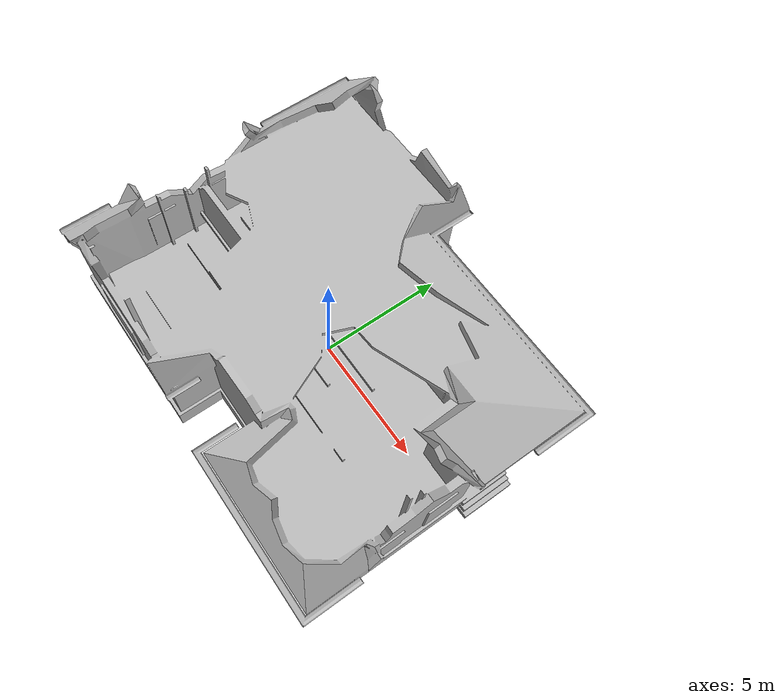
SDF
<?xml version="1.0" ?>
<sdf version="1.6">
  <model name="collapsed_house">
    <static>true</static>
    <link name="link">
      <collision name="collision">
        <geometry>
          <mesh>
            <scale>1.5 1.5 1.5</scale>
            <uri>model://collapsed_house/meshes/collapsed_house.dae</uri>
          </mesh>
        </geometry>
      </collision>
      <visual name="visual">
        <geometry>
          <mesh>
            <scale>1.5 1.5 1.5</scale>
            <uri>model://collapsed_house/meshes/collapsed_house.dae</uri>
          </mesh>
        </geometry>
      </visual>
    </link>
  </model>
</sdf>
